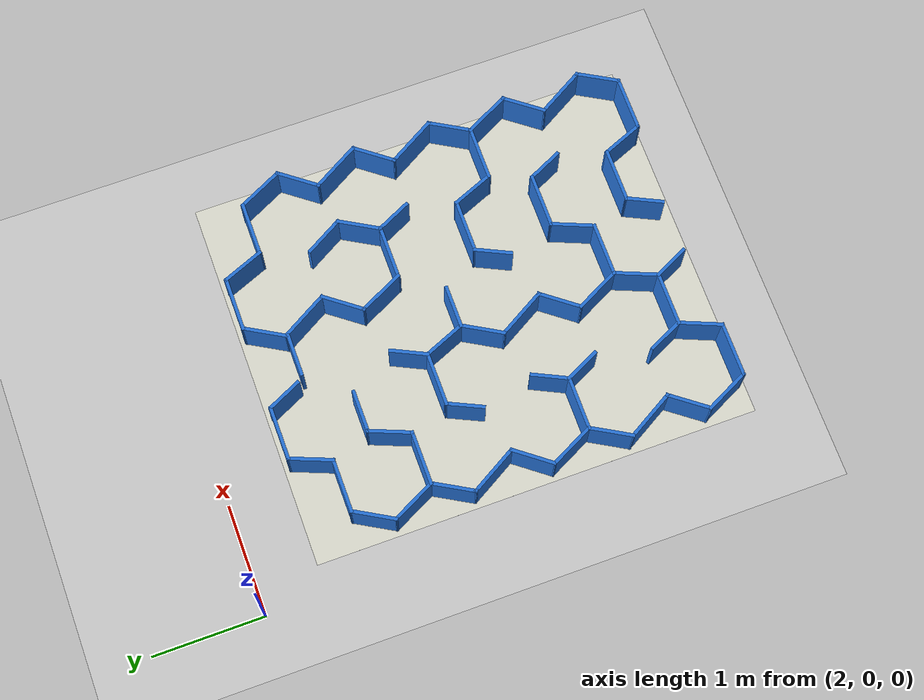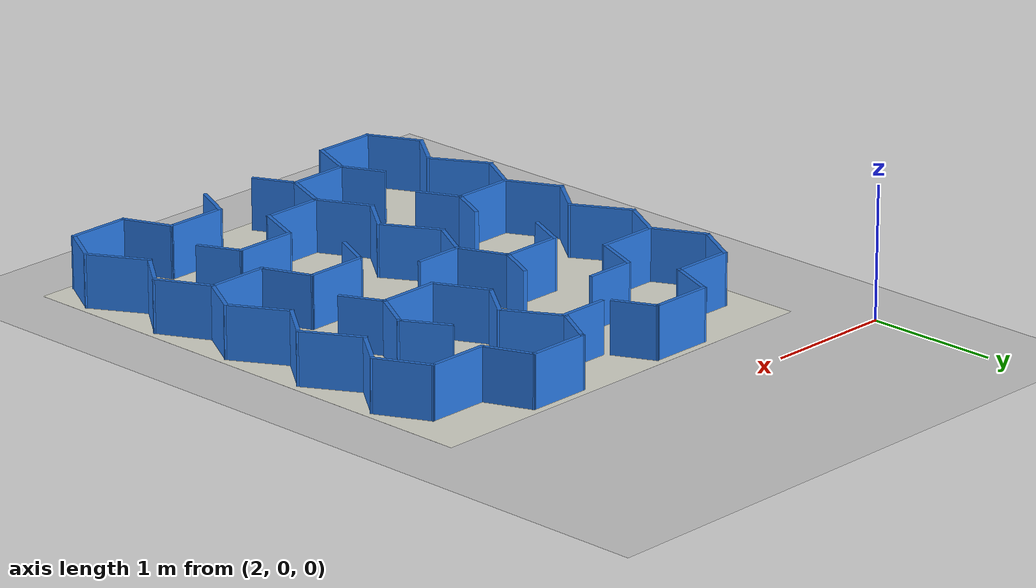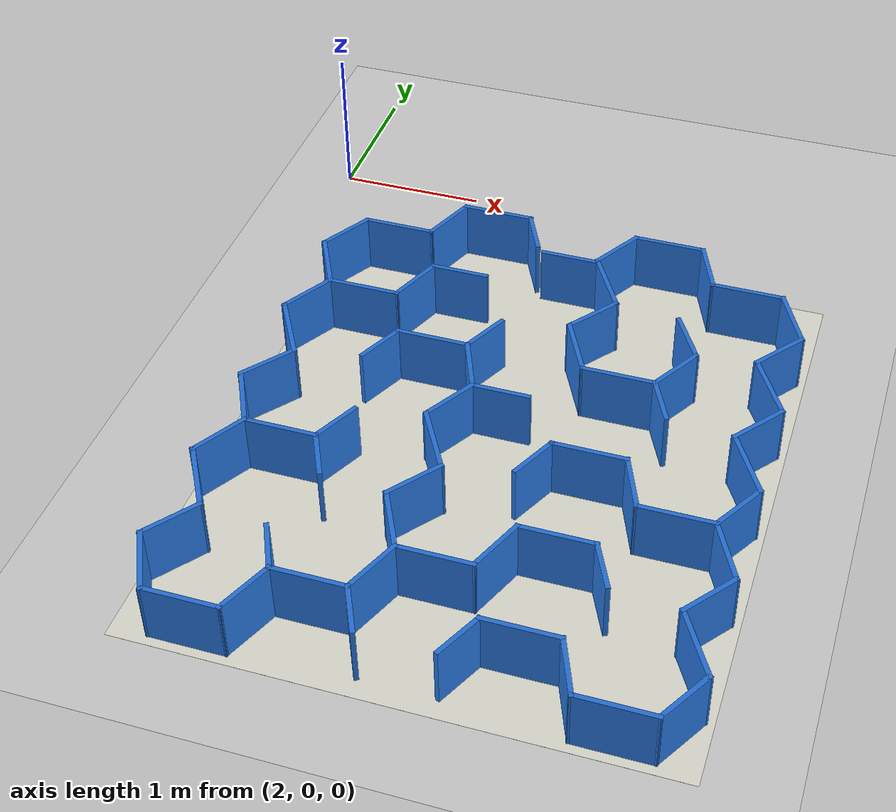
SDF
<?xml version="1.0" ?>
<sdf version="1.10">
<world name="nhom8_maze_sigma_3">
  <physics name="8ms" type="ignored">
    <max_step_size>0.008</max_step_size>
    <real_time_factor>1.0</real_time_factor>
  </physics>
  <plugin filename="gz-sim-physics-system"   name="gz::sim::systems::Physics"/>
  <plugin filename="gz-sim-user-commands-system" name="gz::sim::systems::UserCommands"/>
  <plugin filename="gz-sim-scene-broadcaster-system" name="gz::sim::systems::SceneBroadcaster"/>
  <plugin filename="gz-sim-sensors-system" name="gz::sim::systems::Sensors">
    <render_engine>ogre2</render_engine>
  </plugin>

  <light type="directional" name="sun">
    <cast_shadows>true</cast_shadows>
    <pose>0 0 10 0 0 0</pose>
    <diffuse>1 1 1 1</diffuse>
    <specular>0.5 0.5 0.5 1</specular>
    <attenuation><range>1000</range><constant>0.9</constant>
      <linear>0.01</linear><quadratic>0.001</quadratic></attenuation>
    <direction>-0.5 0.1 -0.9</direction>
  </light>

  <model name="ground_plane">
    <static>true</static>
    <link name="link">
      <collision name="collision">
        <geometry><plane><normal>0 0 1</normal><size>50.0 50.0</size></plane></geometry>
        <surface><friction><ode><mu>40</mu></ode></friction></surface>
      </collision>
      <visual name="visual">
        <geometry><plane><normal>0 0 1</normal><size>50.0 50.0</size></plane></geometry>
        <material>
          <ambient>0.8 0.8 0.8 1</ambient><diffuse>0.8 0.8 0.8 1</diffuse>
          <specular>0.8 0.8 0.8 1</specular>
        </material>
      </visual>
    </link>
  </model>

  <!--  MAZE sigma_3 (family sigma)                -->
  <!--  walls: 69   wall bbox (local): (-1.6473, -1.9402, 1.6479, 1.9489)   -->
  <!--  openings: entrance=north@(0.003,1.594) hw=0.168  exit=south@(0.003,-1.937) hw=0.168   -->
  <!--  start (local): (-0.0223, 1.3348) yaw=-1.5724 rad  -->
  <!--  placement center: (3.9650, -2.5350)   -->

    <model name="wall_000">
      <static>true</static>
      <pose>3.355850 -0.600000 0.2000 0 0 0.000000</pose>
      <link name="link">
        <collision name="col">
          <geometry><box><size>0.4975 0.0300 0.4000</size></box></geometry>
        </collision>
        <visual name="vis">
          <geometry><box><size>0.4975 0.0300 0.4000</size></box></geometry>
          <material><ambient>0.15 0.45 0.85 1</ambient><diffuse>0.15 0.45 0.85 1</diffuse></material>
        </visual>
      </link>
    </model>

    <model name="wall_001">
      <static>true</static>
      <pose>4.575000 -0.600000 0.2000 0 0 0.000000</pose>
      <link name="link">
        <collision name="col">
          <geometry><box><size>0.4966 0.0300 0.4000</size></box></geometry>
        </collision>
        <visual name="vis">
          <geometry><box><size>0.4966 0.0300 0.4000</size></box></geometry>
          <material><ambient>0.15 0.45 0.85 1</ambient><diffuse>0.15 0.45 0.85 1</diffuse></material>
        </visual>
      </link>
    </model>

    <model name="wall_002">
      <static>true</static>
      <pose>2.749750 -0.949300 0.2000 0 0 0.000000</pose>
      <link name="link">
        <collision name="col">
          <geometry><box><size>0.4951 0.0300 0.4000</size></box></geometry>
        </collision>
        <visual name="vis">
          <geometry><box><size>0.4951 0.0300 0.4000</size></box></geometry>
          <material><ambient>0.15 0.45 0.85 1</ambient><diffuse>0.15 0.45 0.85 1</diffuse></material>
        </visual>
      </link>
    </model>

    <model name="wall_003">
      <static>true</static>
      <pose>5.182350 -0.949300 0.2000 0 0 0.000000</pose>
      <link name="link">
        <collision name="col">
          <geometry><box><size>0.4971 0.0300 0.4000</size></box></geometry>
        </collision>
        <visual name="vis">
          <geometry><box><size>0.4971 0.0300 0.4000</size></box></geometry>
          <material><ambient>0.15 0.45 0.85 1</ambient><diffuse>0.15 0.45 0.85 1</diffuse></material>
        </visual>
      </link>
    </model>

    <model name="wall_004">
      <static>true</static>
      <pose>3.304100 -1.303800 0.2000 0 0 0.000000</pose>
      <link name="link">
        <collision name="col">
          <geometry><box><size>0.3936 0.0300 0.4000</size></box></geometry>
        </collision>
        <visual name="vis">
          <geometry><box><size>0.3936 0.0300 0.4000</size></box></geometry>
          <material><ambient>0.15 0.45 0.85 1</ambient><diffuse>0.15 0.45 0.85 1</diffuse></material>
        </visual>
      </link>
    </model>

    <model name="wall_005">
      <static>true</static>
      <pose>2.749350 -1.650000 0.2000 0 0 0.000000</pose>
      <link name="link">
        <collision name="col">
          <geometry><box><size>0.4963 0.0300 0.4000</size></box></geometry>
        </collision>
        <visual name="vis">
          <geometry><box><size>0.4963 0.0300 0.4000</size></box></geometry>
          <material><ambient>0.15 0.45 0.85 1</ambient><diffuse>0.15 0.45 0.85 1</diffuse></material>
        </visual>
      </link>
    </model>

    <model name="wall_006">
      <static>true</static>
      <pose>3.355150 -2.004600 0.2000 0 0 0.000000</pose>
      <link name="link">
        <collision name="col">
          <geometry><box><size>0.4945 0.0300 0.4000</size></box></geometry>
        </collision>
        <visual name="vis">
          <geometry><box><size>0.4945 0.0300 0.4000</size></box></geometry>
          <material><ambient>0.15 0.45 0.85 1</ambient><diffuse>0.15 0.45 0.85 1</diffuse></material>
        </visual>
      </link>
    </model>

    <model name="wall_007">
      <static>true</static>
      <pose>4.573950 -2.004600 0.2000 0 0 0.000000</pose>
      <link name="link">
        <collision name="col">
          <geometry><box><size>0.4937 0.0300 0.4000</size></box></geometry>
        </collision>
        <visual name="vis">
          <geometry><box><size>0.4937 0.0300 0.4000</size></box></geometry>
          <material><ambient>0.15 0.45 0.85 1</ambient><diffuse>0.15 0.45 0.85 1</diffuse></material>
        </visual>
      </link>
    </model>

    <model name="wall_008">
      <static>true</static>
      <pose>3.915200 -2.358200 0.2000 0 0 0.000000</pose>
      <link name="link">
        <collision name="col">
          <geometry><box><size>0.3920 0.0300 0.4000</size></box></geometry>
        </collision>
        <visual name="vis">
          <geometry><box><size>0.3920 0.0300 0.4000</size></box></geometry>
          <material><ambient>0.15 0.45 0.85 1</ambient><diffuse>0.15 0.45 0.85 1</diffuse></material>
        </visual>
      </link>
    </model>

    <model name="wall_009">
      <static>true</static>
      <pose>4.574900 -2.708100 0.2000 0 0 0.000000</pose>
      <link name="link">
        <collision name="col">
          <geometry><box><size>0.4950 0.0300 0.4000</size></box></geometry>
        </collision>
        <visual name="vis">
          <geometry><box><size>0.4950 0.0300 0.4000</size></box></geometry>
          <material><ambient>0.15 0.45 0.85 1</ambient><diffuse>0.15 0.45 0.85 1</diffuse></material>
        </visual>
      </link>
    </model>

    <model name="wall_010">
      <static>true</static>
      <pose>2.747050 -3.059400 0.2000 0 0 0.000000</pose>
      <link name="link">
        <collision name="col">
          <geometry><box><size>0.4929 0.0300 0.4000</size></box></geometry>
        </collision>
        <visual name="vis">
          <geometry><box><size>0.4929 0.0300 0.4000</size></box></geometry>
          <material><ambient>0.15 0.45 0.85 1</ambient><diffuse>0.15 0.45 0.85 1</diffuse></material>
        </visual>
      </link>
    </model>

    <model name="wall_011">
      <static>true</static>
      <pose>5.181650 -3.059400 0.2000 0 0 0.000000</pose>
      <link name="link">
        <collision name="col">
          <geometry><box><size>0.4949 0.0300 0.4000</size></box></geometry>
        </collision>
        <visual name="vis">
          <geometry><box><size>0.4949 0.0300 0.4000</size></box></geometry>
          <material><ambient>0.15 0.45 0.85 1</ambient><diffuse>0.15 0.45 0.85 1</diffuse></material>
        </visual>
      </link>
    </model>

    <model name="wall_012">
      <static>true</static>
      <pose>4.574750 -3.412100 0.2000 0 0 0.000000</pose>
      <link name="link">
        <collision name="col">
          <geometry><box><size>0.4965 0.0300 0.4000</size></box></geometry>
        </collision>
        <visual name="vis">
          <geometry><box><size>0.4965 0.0300 0.4000</size></box></geometry>
          <material><ambient>0.15 0.45 0.85 1</ambient><diffuse>0.15 0.45 0.85 1</diffuse></material>
        </visual>
      </link>
    </model>

    <model name="wall_013">
      <static>true</static>
      <pose>3.966200 -3.760400 0.2000 0 0 0.000000</pose>
      <link name="link">
        <collision name="col">
          <geometry><box><size>0.4938 0.0300 0.4000</size></box></geometry>
        </collision>
        <visual name="vis">
          <geometry><box><size>0.4938 0.0300 0.4000</size></box></geometry>
          <material><ambient>0.15 0.45 0.85 1</ambient><diffuse>0.15 0.45 0.85 1</diffuse></material>
        </visual>
      </link>
    </model>

    <model name="wall_014">
      <static>true</static>
      <pose>3.357200 -4.115800 0.2000 0 0 0.000000</pose>
      <link name="link">
        <collision name="col">
          <geometry><box><size>0.4934 0.0300 0.4000</size></box></geometry>
        </collision>
        <visual name="vis">
          <geometry><box><size>0.4934 0.0300 0.4000</size></box></geometry>
          <material><ambient>0.15 0.45 0.85 1</ambient><diffuse>0.15 0.45 0.85 1</diffuse></material>
        </visual>
      </link>
    </model>

    <model name="wall_015">
      <static>true</static>
      <pose>4.574950 -4.115800 0.2000 0 0 0.000000</pose>
      <link name="link">
        <collision name="col">
          <geometry><box><size>0.4961 0.0300 0.4000</size></box></geometry>
        </collision>
        <visual name="vis">
          <geometry><box><size>0.4961 0.0300 0.4000</size></box></geometry>
          <material><ambient>0.15 0.45 0.85 1</ambient><diffuse>0.15 0.45 0.85 1</diffuse></material>
        </visual>
      </link>
    </model>

    <model name="wall_016">
      <static>true</static>
      <pose>2.747650 -4.461300 0.2000 0 0 0.000000</pose>
      <link name="link">
        <collision name="col">
          <geometry><box><size>0.4993 0.0300 0.4000</size></box></geometry>
        </collision>
        <visual name="vis">
          <geometry><box><size>0.4993 0.0300 0.4000</size></box></geometry>
          <material><ambient>0.15 0.45 0.85 1</ambient><diffuse>0.15 0.45 0.85 1</diffuse></material>
        </visual>
      </link>
    </model>

    <model name="wall_017">
      <static>true</static>
      <pose>5.182550 -4.461300 0.2000 0 0 0.000000</pose>
      <link name="link">
        <collision name="col">
          <geometry><box><size>0.4995 0.0300 0.4000</size></box></geometry>
        </collision>
        <visual name="vis">
          <geometry><box><size>0.4995 0.0300 0.4000</size></box></geometry>
          <material><ambient>0.15 0.45 0.85 1</ambient><diffuse>0.15 0.45 0.85 1</diffuse></material>
        </visual>
      </link>
    </model>

    <model name="wall_018">
      <static>true</static>
      <pose>5.509000 -1.138300 0.2000 0 0 -1.113095</pose>
      <link name="link">
        <collision name="col">
          <geometry><box><size>0.4512 0.0300 0.4000</size></box></geometry>
        </collision>
        <visual name="vis">
          <geometry><box><size>0.4512 0.0300 0.4000</size></box></geometry>
          <material><ambient>0.15 0.45 0.85 1</ambient><diffuse>0.15 0.45 0.85 1</diffuse></material>
        </visual>
      </link>
    </model>

    <model name="wall_019">
      <static>true</static>
      <pose>4.878550 -0.774700 0.2000 0 0 -1.188417</pose>
      <link name="link">
        <collision name="col">
          <geometry><box><size>0.4066 0.0300 0.4000</size></box></geometry>
        </collision>
        <visual name="vis">
          <geometry><box><size>0.4066 0.0300 0.4000</size></box></geometry>
          <material><ambient>0.15 0.45 0.85 1</ambient><diffuse>0.15 0.45 0.85 1</diffuse></material>
        </visual>
      </link>
    </model>

    <model name="wall_020">
      <static>true</static>
      <pose>5.487350 -1.828900 0.2000 0 0 -1.047139</pose>
      <link name="link">
        <collision name="col">
          <geometry><box><size>0.4922 0.0300 0.4000</size></box></geometry>
        </collision>
        <visual name="vis">
          <geometry><box><size>0.4922 0.0300 0.4000</size></box></geometry>
          <material><ambient>0.15 0.45 0.85 1</ambient><diffuse>0.15 0.45 0.85 1</diffuse></material>
        </visual>
      </link>
    </model>

    <model name="wall_021">
      <static>true</static>
      <pose>4.903350 -1.521250 0.2000 0 0 -1.047136</pose>
      <link name="link">
        <collision name="col">
          <geometry><box><size>0.3930 0.0300 0.4000</size></box></geometry>
        </collision>
        <visual name="vis">
          <geometry><box><size>0.3930 0.0300 0.4000</size></box></geometry>
          <material><ambient>0.15 0.45 0.85 1</ambient><diffuse>0.15 0.45 0.85 1</diffuse></material>
        </visual>
      </link>
    </model>

    <model name="wall_022">
      <static>true</static>
      <pose>5.487050 -2.532250 0.2000 0 0 -1.047107</pose>
      <link name="link">
        <collision name="col">
          <geometry><box><size>0.4941 0.0300 0.4000</size></box></geometry>
        </collision>
        <visual name="vis">
          <geometry><box><size>0.4941 0.0300 0.4000</size></box></geometry>
          <material><ambient>0.15 0.45 0.85 1</ambient><diffuse>0.15 0.45 0.85 1</diffuse></material>
        </visual>
      </link>
    </model>

    <model name="wall_023">
      <static>true</static>
      <pose>4.269500 -1.125650 0.2000 0 0 -1.047268</pose>
      <link name="link">
        <collision name="col">
          <geometry><box><size>0.4925 0.0300 0.4000</size></box></geometry>
        </collision>
        <visual name="vis">
          <geometry><box><size>0.4925 0.0300 0.4000</size></box></geometry>
          <material><ambient>0.15 0.45 0.85 1</ambient><diffuse>0.15 0.45 0.85 1</diffuse></material>
        </visual>
      </link>
    </model>

    <model name="wall_024">
      <static>true</static>
      <pose>4.874850 -2.149200 0.2000 0 0 -1.125015</pose>
      <link name="link">
        <collision name="col">
          <geometry><box><size>0.3504 0.0300 0.4000</size></box></geometry>
        </collision>
        <visual name="vis">
          <geometry><box><size>0.3504 0.0300 0.4000</size></box></geometry>
          <material><ambient>0.15 0.45 0.85 1</ambient><diffuse>0.15 0.45 0.85 1</diffuse></material>
        </visual>
      </link>
    </model>

    <model name="wall_025">
      <static>true</static>
      <pose>5.508950 -3.247850 0.2000 0 0 -1.104675</pose>
      <link name="link">
        <collision name="col">
          <geometry><box><size>0.4519 0.0300 0.4000</size></box></geometry>
        </collision>
        <visual name="vis">
          <geometry><box><size>0.4519 0.0300 0.4000</size></box></geometry>
          <material><ambient>0.15 0.45 0.85 1</ambient><diffuse>0.15 0.45 0.85 1</diffuse></material>
        </visual>
      </link>
    </model>

    <model name="wall_026">
      <static>true</static>
      <pose>3.657750 -0.743350 0.2000 0 0 -1.126587</pose>
      <link name="link">
        <collision name="col">
          <geometry><box><size>0.3474 0.0300 0.4000</size></box></geometry>
        </collision>
        <visual name="vis">
          <geometry><box><size>0.3474 0.0300 0.4000</size></box></geometry>
          <material><ambient>0.15 0.45 0.85 1</ambient><diffuse>0.15 0.45 0.85 1</diffuse></material>
        </visual>
      </link>
    </model>

    <model name="wall_027">
      <static>true</static>
      <pose>4.248250 -1.816650 0.2000 0 0 -1.107645</pose>
      <link name="link">
        <collision name="col">
          <geometry><box><size>0.4501 0.0300 0.4000</size></box></geometry>
        </collision>
        <visual name="vis">
          <geometry><box><size>0.4501 0.0300 0.4000</size></box></geometry>
          <material><ambient>0.15 0.45 0.85 1</ambient><diffuse>0.15 0.45 0.85 1</diffuse></material>
        </visual>
      </link>
    </model>

    <model name="wall_028">
      <static>true</static>
      <pose>4.878300 -2.883750 0.2000 0 0 -1.187201</pose>
      <link name="link">
        <collision name="col">
          <geometry><box><size>0.4088 0.0300 0.4000</size></box></geometry>
        </collision>
        <visual name="vis">
          <geometry><box><size>0.4088 0.0300 0.4000</size></box></geometry>
          <material><ambient>0.15 0.45 0.85 1</ambient><diffuse>0.15 0.45 0.85 1</diffuse></material>
        </visual>
      </link>
    </model>

    <model name="wall_029">
      <static>true</static>
      <pose>5.487450 -3.937750 0.2000 0 0 -1.047171</pose>
      <link name="link">
        <collision name="col">
          <geometry><box><size>0.4902 0.0300 0.4000</size></box></geometry>
        </collision>
        <visual name="vis">
          <geometry><box><size>0.4902 0.0300 0.4000</size></box></geometry>
          <material><ambient>0.15 0.45 0.85 1</ambient><diffuse>0.15 0.45 0.85 1</diffuse></material>
        </visual>
      </link>
    </model>

    <model name="wall_030">
      <static>true</static>
      <pose>4.875600 -3.555950 0.2000 0 0 -1.131443</pose>
      <link name="link">
        <collision name="col">
          <geometry><box><size>0.3479 0.0300 0.4000</size></box></geometry>
        </collision>
        <visual name="vis">
          <geometry><box><size>0.3479 0.0300 0.4000</size></box></geometry>
          <material><ambient>0.15 0.45 0.85 1</ambient><diffuse>0.15 0.45 0.85 1</diffuse></material>
        </visual>
      </link>
    </model>

    <model name="wall_031">
      <static>true</static>
      <pose>3.660800 -2.181400 0.2000 0 0 -1.177422</pose>
      <link name="link">
        <collision name="col">
          <geometry><box><size>0.4127 0.0300 0.4000</size></box></geometry>
        </collision>
        <visual name="vis">
          <geometry><box><size>0.4127 0.0300 0.4000</size></box></geometry>
          <material><ambient>0.15 0.45 0.85 1</ambient><diffuse>0.15 0.45 0.85 1</diffuse></material>
        </visual>
      </link>
    </model>

    <model name="wall_032">
      <static>true</static>
      <pose>4.877850 -4.288550 0.2000 0 0 -1.186186</pose>
      <link name="link">
        <collision name="col">
          <geometry><box><size>0.4027 0.0300 0.4000</size></box></geometry>
        </collision>
        <visual name="vis">
          <geometry><box><size>0.4027 0.0300 0.4000</size></box></geometry>
          <material><ambient>0.15 0.45 0.85 1</ambient><diffuse>0.15 0.45 0.85 1</diffuse></material>
        </visual>
      </link>
    </model>

    <model name="wall_033">
      <static>true</static>
      <pose>3.661100 -2.883550 0.2000 0 0 -1.047065</pose>
      <link name="link">
        <collision name="col">
          <geometry><box><size>0.4923 0.0300 0.4000</size></box></geometry>
        </collision>
        <visual name="vis">
          <geometry><box><size>0.4923 0.0300 0.4000</size></box></geometry>
          <material><ambient>0.15 0.45 0.85 1</ambient><diffuse>0.15 0.45 0.85 1</diffuse></material>
        </visual>
      </link>
    </model>

    <model name="wall_034">
      <static>true</static>
      <pose>2.422350 -1.463700 0.2000 0 0 -1.103949</pose>
      <link name="link">
        <collision name="col">
          <geometry><box><size>0.4473 0.0300 0.4000</size></box></geometry>
        </collision>
        <visual name="vis">
          <geometry><box><size>0.4473 0.0300 0.4000</size></box></geometry>
          <material><ambient>0.15 0.45 0.85 1</ambient><diffuse>0.15 0.45 0.85 1</diffuse></material>
        </visual>
      </link>
    </model>

    <model name="wall_035">
      <static>true</static>
      <pose>3.639600 -3.572500 0.2000 0 0 -1.104173</pose>
      <link name="link">
        <collision name="col">
          <geometry><box><size>0.4508 0.0300 0.4000</size></box></geometry>
        </collision>
        <visual name="vis">
          <geometry><box><size>0.4508 0.0300 0.4000</size></box></geometry>
          <material><ambient>0.15 0.45 0.85 1</ambient><diffuse>0.15 0.45 0.85 1</diffuse></material>
        </visual>
      </link>
    </model>

    <model name="wall_036">
      <static>true</static>
      <pose>2.443400 -2.180300 0.2000 0 0 -1.047112</pose>
      <link name="link">
        <collision name="col">
          <geometry><box><size>0.4919 0.0300 0.4000</size></box></geometry>
        </collision>
        <visual name="vis">
          <geometry><box><size>0.4919 0.0300 0.4000</size></box></geometry>
          <material><ambient>0.15 0.45 0.85 1</ambient><diffuse>0.15 0.45 0.85 1</diffuse></material>
        </visual>
      </link>
    </model>

    <model name="wall_037">
      <static>true</static>
      <pose>3.047900 -3.203450 0.2000 0 0 -1.121854</pose>
      <link name="link">
        <collision name="col">
          <geometry><box><size>0.3498 0.0300 0.4000</size></box></geometry>
        </collision>
        <visual name="vis">
          <geometry><box><size>0.3498 0.0300 0.4000</size></box></geometry>
          <material><ambient>0.15 0.45 0.85 1</ambient><diffuse>0.15 0.45 0.85 1</diffuse></material>
        </visual>
      </link>
    </model>

    <model name="wall_038">
      <static>true</static>
      <pose>3.657650 -4.259150 0.2000 0 0 -1.123473</pose>
      <link name="link">
        <collision name="col">
          <geometry><box><size>0.3479 0.0300 0.4000</size></box></geometry>
        </collision>
        <visual name="vis">
          <geometry><box><size>0.3479 0.0300 0.4000</size></box></geometry>
          <material><ambient>0.15 0.45 0.85 1</ambient><diffuse>0.15 0.45 0.85 1</diffuse></material>
        </visual>
      </link>
    </model>

    <model name="wall_039">
      <static>true</static>
      <pose>2.421250 -2.870300 0.2000 0 0 -1.107939</pose>
      <link name="link">
        <collision name="col">
          <geometry><box><size>0.4526 0.0300 0.4000</size></box></geometry>
        </collision>
        <visual name="vis">
          <geometry><box><size>0.4526 0.0300 0.4000</size></box></geometry>
          <material><ambient>0.15 0.45 0.85 1</ambient><diffuse>0.15 0.45 0.85 1</diffuse></material>
        </visual>
      </link>
    </model>

    <model name="wall_040">
      <static>true</static>
      <pose>3.056400 -3.970400 0.2000 0 0 -1.127476</pose>
      <link name="link">
        <collision name="col">
          <geometry><box><size>0.3520 0.0300 0.4000</size></box></geometry>
        </collision>
        <visual name="vis">
          <geometry><box><size>0.3520 0.0300 0.4000</size></box></geometry>
          <material><ambient>0.15 0.45 0.85 1</ambient><diffuse>0.15 0.45 0.85 1</diffuse></material>
        </visual>
      </link>
    </model>

    <model name="wall_041">
      <static>true</static>
      <pose>2.443200 -3.585850 0.2000 0 0 -1.047213</pose>
      <link name="link">
        <collision name="col">
          <geometry><box><size>0.4920 0.0300 0.4000</size></box></geometry>
        </collision>
        <visual name="vis">
          <geometry><box><size>0.4920 0.0300 0.4000</size></box></geometry>
          <material><ambient>0.15 0.45 0.85 1</ambient><diffuse>0.15 0.45 0.85 1</diffuse></material>
        </visual>
      </link>
    </model>

    <model name="wall_042">
      <static>true</static>
      <pose>2.420950 -4.274850 0.2000 0 0 -1.112266</pose>
      <link name="link">
        <collision name="col">
          <geometry><box><size>0.4457 0.0300 0.4000</size></box></geometry>
        </collision>
        <visual name="vis">
          <geometry><box><size>0.4457 0.0300 0.4000</size></box></geometry>
          <material><ambient>0.15 0.45 0.85 1</ambient><diffuse>0.15 0.45 0.85 1</diffuse></material>
        </visual>
      </link>
    </model>

    <model name="wall_043">
      <static>true</static>
      <pose>5.509900 -4.299150 0.2000 0 0 1.051589</pose>
      <link name="link">
        <collision name="col">
          <geometry><box><size>0.4035 0.0300 0.4000</size></box></geometry>
        </collision>
        <visual name="vis">
          <geometry><box><size>0.4035 0.0300 0.4000</size></box></geometry>
          <material><ambient>0.15 0.45 0.85 1</ambient><diffuse>0.15 0.45 0.85 1</diffuse></material>
        </visual>
      </link>
    </model>

    <model name="wall_044">
      <static>true</static>
      <pose>5.488100 -3.587400 0.2000 0 0 0.917358</pose>
      <link name="link">
        <collision name="col">
          <geometry><box><size>0.4106 0.0300 0.4000</size></box></geometry>
        </collision>
        <visual name="vis">
          <geometry><box><size>0.4106 0.0300 0.4000</size></box></geometry>
          <material><ambient>0.15 0.45 0.85 1</ambient><diffuse>0.15 0.45 0.85 1</diffuse></material>
        </visual>
      </link>
    </model>

    <model name="wall_045">
      <static>true</static>
      <pose>5.508600 -2.896250 0.2000 0 0 1.045676</pose>
      <link name="link">
        <collision name="col">
          <geometry><box><size>0.4069 0.0300 0.4000</size></box></geometry>
        </collision>
        <visual name="vis">
          <geometry><box><size>0.4069 0.0300 0.4000</size></box></geometry>
          <material><ambient>0.15 0.45 0.85 1</ambient><diffuse>0.15 0.45 0.85 1</diffuse></material>
        </visual>
      </link>
    </model>

    <model name="wall_046">
      <static>true</static>
      <pose>5.486950 -2.180150 0.2000 0 0 0.916540</pose>
      <link name="link">
        <collision name="col">
          <geometry><box><size>0.4110 0.0300 0.4000</size></box></geometry>
        </collision>
        <visual name="vis">
          <geometry><box><size>0.4110 0.0300 0.4000</size></box></geometry>
          <material><ambient>0.15 0.45 0.85 1</ambient><diffuse>0.15 0.45 0.85 1</diffuse></material>
        </visual>
      </link>
    </model>

    <model name="wall_047">
      <static>true</static>
      <pose>4.273200 -4.259400 0.2000 0 0 1.124353</pose>
      <link name="link">
        <collision name="col">
          <geometry><box><size>0.3483 0.0300 0.4000</size></box></geometry>
        </collision>
        <visual name="vis">
          <geometry><box><size>0.3483 0.0300 0.4000</size></box></geometry>
          <material><ambient>0.15 0.45 0.85 1</ambient><diffuse>0.15 0.45 0.85 1</diffuse></material>
        </visual>
      </link>
    </model>

    <model name="wall_048">
      <static>true</static>
      <pose>5.486950 -1.478000 0.2000 0 0 0.918600</pose>
      <link name="link">
        <collision name="col">
          <geometry><box><size>0.4094 0.0300 0.4000</size></box></geometry>
        </collision>
        <visual name="vis">
          <geometry><box><size>0.4094 0.0300 0.4000</size></box></geometry>
          <material><ambient>0.15 0.45 0.85 1</ambient><diffuse>0.15 0.45 0.85 1</diffuse></material>
        </visual>
      </link>
    </model>

    <model name="wall_049">
      <static>true</static>
      <pose>4.269800 -3.586250 0.2000 0 0 1.180336</pose>
      <link name="link">
        <collision name="col">
          <geometry><box><size>0.4067 0.0300 0.4000</size></box></geometry>
        </collision>
        <visual name="vis">
          <geometry><box><size>0.4067 0.0300 0.4000</size></box></geometry>
          <material><ambient>0.15 0.45 0.85 1</ambient><diffuse>0.15 0.45 0.85 1</diffuse></material>
        </visual>
      </link>
    </model>

    <model name="wall_050">
      <static>true</static>
      <pose>4.899950 -1.841500 0.2000 0 0 1.047289</pose>
      <link name="link">
        <collision name="col">
          <geometry><box><size>0.4067 0.0300 0.4000</size></box></geometry>
        </collision>
        <visual name="vis">
          <geometry><box><size>0.4067 0.0300 0.4000</size></box></geometry>
          <material><ambient>0.15 0.45 0.85 1</ambient><diffuse>0.15 0.45 0.85 1</diffuse></material>
        </visual>
      </link>
    </model>

    <model name="wall_051">
      <static>true</static>
      <pose>4.273700 -2.851750 0.2000 0 0 1.124995</pose>
      <link name="link">
        <collision name="col">
          <geometry><box><size>0.3483 0.0300 0.4000</size></box></geometry>
        </collision>
        <visual name="vis">
          <geometry><box><size>0.3483 0.0300 0.4000</size></box></geometry>
          <material><ambient>0.15 0.45 0.85 1</ambient><diffuse>0.15 0.45 0.85 1</diffuse></material>
        </visual>
      </link>
    </model>

    <model name="wall_052">
      <static>true</static>
      <pose>3.661550 -3.938100 0.2000 0 0 1.182620</pose>
      <link name="link">
        <collision name="col">
          <geometry><box><size>0.4140 0.0300 0.4000</size></box></geometry>
        </collision>
        <visual name="vis">
          <geometry><box><size>0.4140 0.0300 0.4000</size></box></geometry>
          <material><ambient>0.15 0.45 0.85 1</ambient><diffuse>0.15 0.45 0.85 1</diffuse></material>
        </visual>
      </link>
    </model>

    <model name="wall_053">
      <static>true</static>
      <pose>3.660800 -3.234150 0.2000 0 0 0.914654</pose>
      <link name="link">
        <collision name="col">
          <geometry><box><size>0.4098 0.0300 0.4000</size></box></geometry>
        </collision>
        <visual name="vis">
          <geometry><box><size>0.4098 0.0300 0.4000</size></box></geometry>
          <material><ambient>0.15 0.45 0.85 1</ambient><diffuse>0.15 0.45 0.85 1</diffuse></material>
        </visual>
      </link>
    </model>

    <model name="wall_054">
      <static>true</static>
      <pose>3.053850 -4.288500 0.2000 0 0 1.177833</pose>
      <link name="link">
        <collision name="col">
          <geometry><box><size>0.4040 0.0300 0.4000</size></box></geometry>
        </collision>
        <visual name="vis">
          <geometry><box><size>0.4040 0.0300 0.4000</size></box></geometry>
          <material><ambient>0.15 0.45 0.85 1</ambient><diffuse>0.15 0.45 0.85 1</diffuse></material>
        </visual>
      </link>
    </model>

    <model name="wall_055">
      <static>true</static>
      <pose>4.269750 -1.477300 0.2000 0 0 0.919600</pose>
      <link name="link">
        <collision name="col">
          <geometry><box><size>0.4106 0.0300 0.4000</size></box></geometry>
        </collision>
        <visual name="vis">
          <geometry><box><size>0.4106 0.0300 0.4000</size></box></geometry>
          <material><ambient>0.15 0.45 0.85 1</ambient><diffuse>0.15 0.45 0.85 1</diffuse></material>
        </visual>
      </link>
    </model>

    <model name="wall_056">
      <static>true</static>
      <pose>3.639850 -2.520800 0.2000 0 0 1.045204</pose>
      <link name="link">
        <collision name="col">
          <geometry><box><size>0.4060 0.0300 0.4000</size></box></geometry>
        </collision>
        <visual name="vis">
          <geometry><box><size>0.4060 0.0300 0.4000</size></box></geometry>
          <material><ambient>0.15 0.45 0.85 1</ambient><diffuse>0.15 0.45 0.85 1</diffuse></material>
        </visual>
      </link>
    </model>

    <model name="wall_057">
      <static>true</static>
      <pose>4.247800 -0.762700 0.2000 0 0 1.047370</pose>
      <link name="link">
        <collision name="col">
          <geometry><box><size>0.4057 0.0300 0.4000</size></box></geometry>
        </collision>
        <visual name="vis">
          <geometry><box><size>0.4057 0.0300 0.4000</size></box></geometry>
          <material><ambient>0.15 0.45 0.85 1</ambient><diffuse>0.15 0.45 0.85 1</diffuse></material>
        </visual>
      </link>
    </model>

    <model name="wall_058">
      <static>true</static>
      <pose>3.656750 -1.860750 0.2000 0 0 1.121614</pose>
      <link name="link">
        <collision name="col">
          <geometry><box><size>0.3494 0.0300 0.4000</size></box></geometry>
        </collision>
        <visual name="vis">
          <geometry><box><size>0.3494 0.0300 0.4000</size></box></geometry>
          <material><ambient>0.15 0.45 0.85 1</ambient><diffuse>0.15 0.45 0.85 1</diffuse></material>
        </visual>
      </link>
    </model>

    <model name="wall_059">
      <static>true</static>
      <pose>3.048300 -2.914750 0.2000 0 0 1.121284</pose>
      <link name="link">
        <collision name="col">
          <geometry><box><size>0.3512 0.0300 0.4000</size></box></geometry>
        </collision>
        <visual name="vis">
          <geometry><box><size>0.3512 0.0300 0.4000</size></box></geometry>
          <material><ambient>0.15 0.45 0.85 1</ambient><diffuse>0.15 0.45 0.85 1</diffuse></material>
        </visual>
      </link>
    </model>

    <model name="wall_060">
      <static>true</static>
      <pose>2.443800 -3.937150 0.2000 0 0 0.921198</pose>
      <link name="link">
        <collision name="col">
          <geometry><box><size>0.4100 0.0300 0.4000</size></box></geometry>
        </collision>
        <visual name="vis">
          <geometry><box><size>0.4100 0.0300 0.4000</size></box></geometry>
          <material><ambient>0.15 0.45 0.85 1</ambient><diffuse>0.15 0.45 0.85 1</diffuse></material>
        </visual>
      </link>
    </model>

    <model name="wall_061">
      <static>true</static>
      <pose>3.054950 -2.149500 0.2000 0 0 1.132702</pose>
      <link name="link">
        <collision name="col">
          <geometry><box><size>0.3501 0.0300 0.4000</size></box></geometry>
        </collision>
        <visual name="vis">
          <geometry><box><size>0.3501 0.0300 0.4000</size></box></geometry>
          <material><ambient>0.15 0.45 0.85 1</ambient><diffuse>0.15 0.45 0.85 1</diffuse></material>
        </visual>
      </link>
    </model>

    <model name="wall_062">
      <static>true</static>
      <pose>2.421650 -3.222600 0.2000 0 0 1.048386</pose>
      <link name="link">
        <collision name="col">
          <geometry><box><size>0.4066 0.0300 0.4000</size></box></geometry>
        </collision>
        <visual name="vis">
          <geometry><box><size>0.4066 0.0300 0.4000</size></box></geometry>
          <material><ambient>0.15 0.45 0.85 1</ambient><diffuse>0.15 0.45 0.85 1</diffuse></material>
        </visual>
      </link>
    </model>

    <model name="wall_063">
      <static>true</static>
      <pose>3.052400 -1.476900 0.2000 0 0 1.187067</pose>
      <link name="link">
        <collision name="col">
          <geometry><box><size>0.4033 0.0300 0.4000</size></box></geometry>
        </collision>
        <visual name="vis">
          <geometry><box><size>0.4033 0.0300 0.4000</size></box></geometry>
          <material><ambient>0.15 0.45 0.85 1</ambient><diffuse>0.15 0.45 0.85 1</diffuse></material>
        </visual>
      </link>
    </model>

    <model name="wall_064">
      <static>true</static>
      <pose>2.442850 -2.530750 0.2000 0 0 0.914075</pose>
      <link name="link">
        <collision name="col">
          <geometry><box><size>0.4100 0.0300 0.4000</size></box></geometry>
        </collision>
        <visual name="vis">
          <geometry><box><size>0.4100 0.0300 0.4000</size></box></geometry>
          <material><ambient>0.15 0.45 0.85 1</ambient><diffuse>0.15 0.45 0.85 1</diffuse></material>
        </visual>
      </link>
    </model>

    <model name="wall_065">
      <static>true</static>
      <pose>3.052200 -0.774700 0.2000 0 0 1.190016</pose>
      <link name="link">
        <collision name="col">
          <geometry><box><size>0.4063 0.0300 0.4000</size></box></geometry>
        </collision>
        <visual name="vis">
          <geometry><box><size>0.4063 0.0300 0.4000</size></box></geometry>
          <material><ambient>0.15 0.45 0.85 1</ambient><diffuse>0.15 0.45 0.85 1</diffuse></material>
        </visual>
      </link>
    </model>

    <model name="wall_066">
      <static>true</static>
      <pose>2.422100 -1.815150 0.2000 0 0 1.052497</pose>
      <link name="link">
        <collision name="col">
          <geometry><box><size>0.4102 0.0300 0.4000</size></box></geometry>
        </collision>
        <visual name="vis">
          <geometry><box><size>0.4102 0.0300 0.4000</size></box></geometry>
          <material><ambient>0.15 0.45 0.85 1</ambient><diffuse>0.15 0.45 0.85 1</diffuse></material>
        </visual>
      </link>
    </model>

    <model name="wall_067">
      <static>true</static>
      <pose>2.422800 -1.113350 0.2000 0 0 1.048554</pose>
      <link name="link">
        <collision name="col">
          <geometry><box><size>0.4086 0.0300 0.4000</size></box></geometry>
        </collision>
        <visual name="vis">
          <geometry><box><size>0.4086 0.0300 0.4000</size></box></geometry>
          <material><ambient>0.15 0.45 0.85 1</ambient><diffuse>0.15 0.45 0.85 1</diffuse></material>
        </visual>
      </link>
    </model>

    <model name="wall_068">
      <static>true</static>
      <pose>3.967900 -0.940800 0.2000 0 0 0.000000</pose>
      <link name="link">
        <collision name="col">
          <geometry><box><size>0.3966 0.0300 0.4000</size></box></geometry>
        </collision>
        <visual name="vis">
          <geometry><box><size>0.3966 0.0300 0.4000</size></box></geometry>
          <material><ambient>0.15 0.45 0.85 1</ambient><diffuse>0.15 0.45 0.85 1</diffuse></material>
        </visual>
      </link>
    </model>

    <model name="floor">
      <static>true</static>
      <pose>3.965000 -2.535000 -0.02 0 0 0</pose>
      <link name="link">
        <collision name="col">
          <geometry><box><size>3.3952 3.9891 0.03</size></box></geometry>
        </collision>
        <visual name="vis">
          <geometry><box><size>3.3952 3.9891 0.03</size></box></geometry>
          <material><ambient>0.87 0.87 0.82 1</ambient><diffuse>0.87 0.87 0.82 1</diffuse></material>
        </visual>
      </link>
    </model>
</world>
</sdf>
